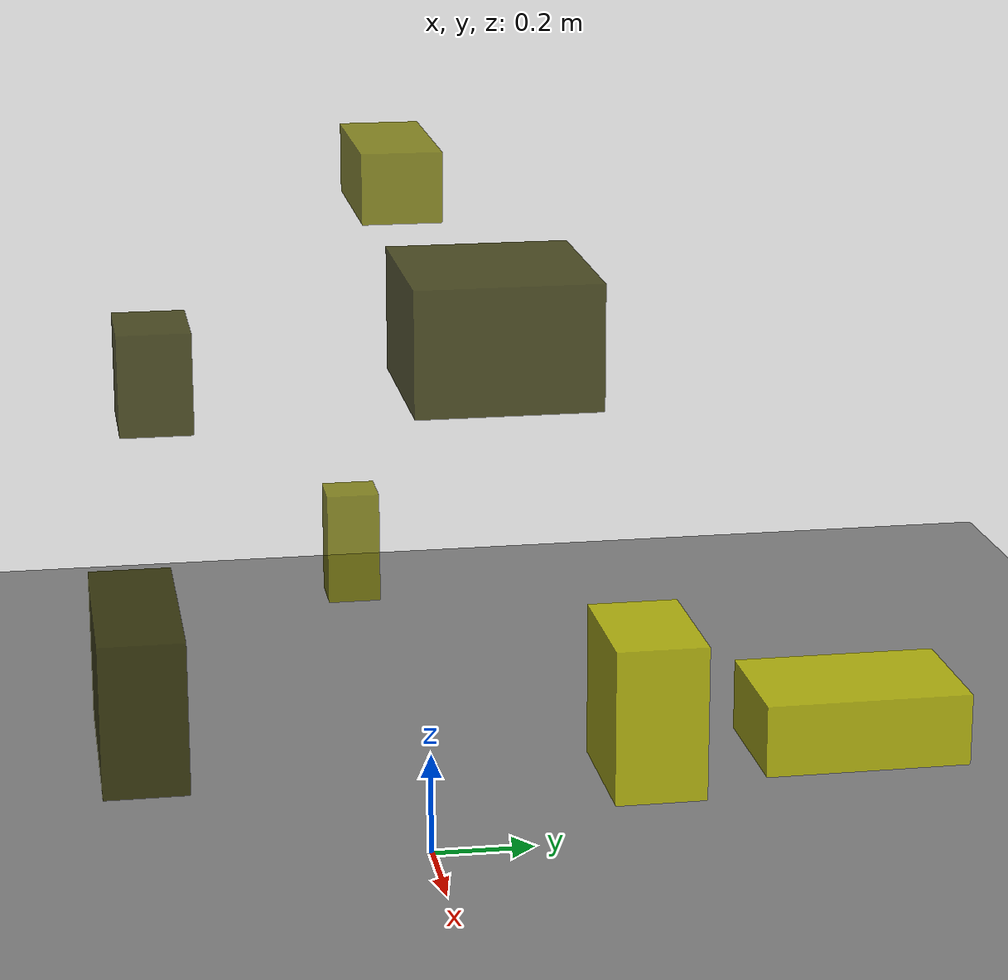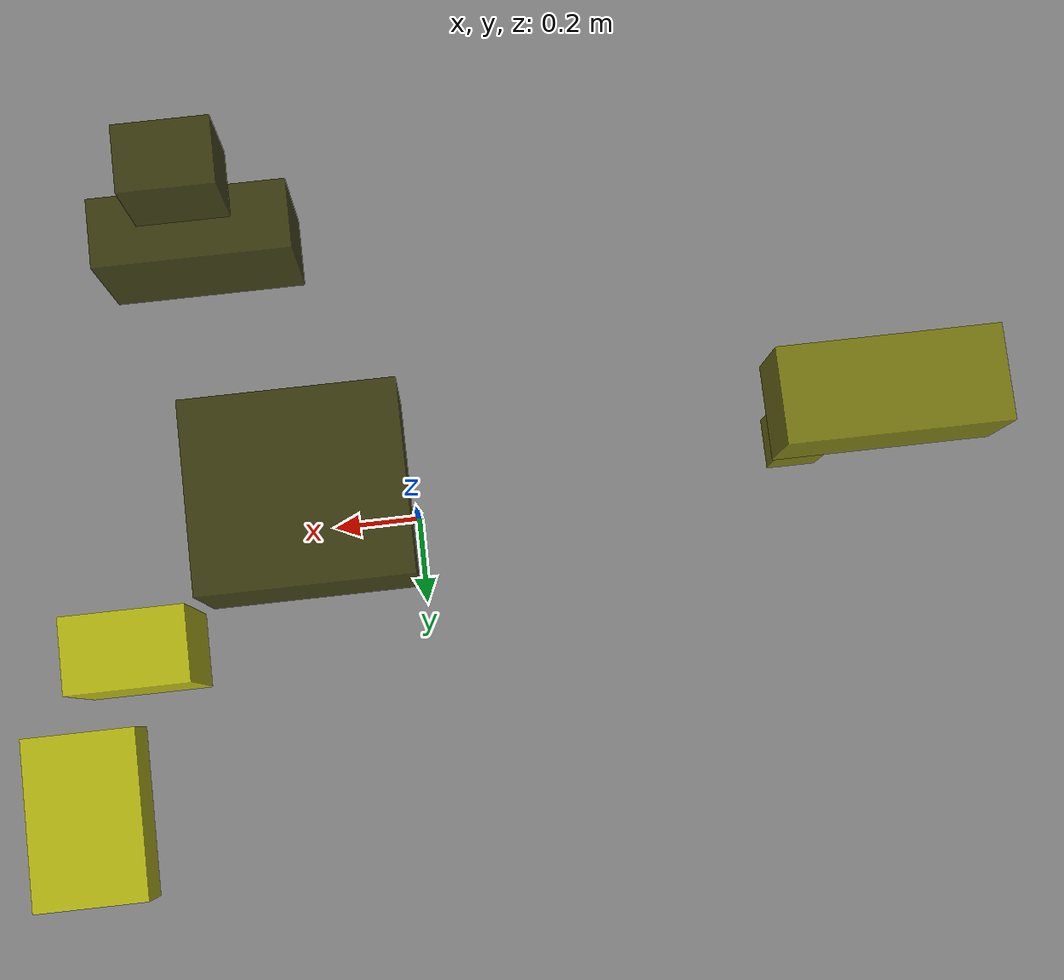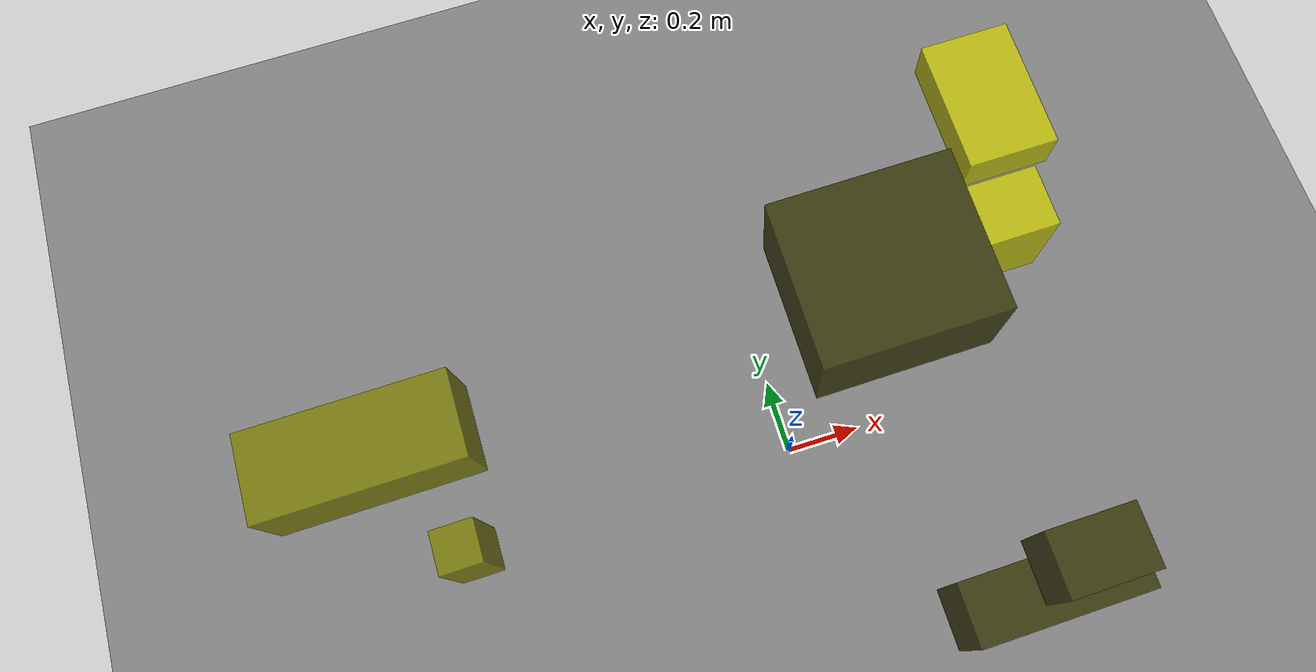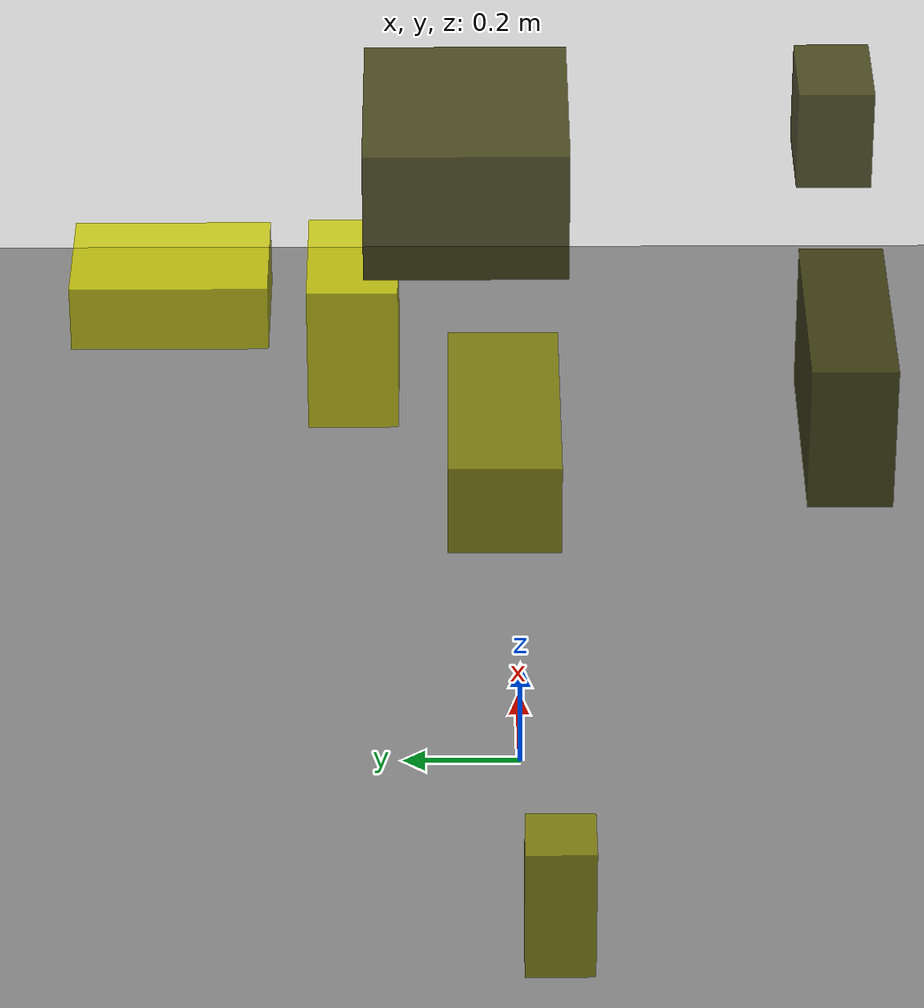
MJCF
<?xml version="1.0"?>
<mujoco model="obstacle_scene">
  <compiler angle="radian" coordinate="local"/>
  <option timestep="0.001" gravity="0 0 -9.81"/>

  <asset>
    <material name="obstacle_mat" rgba="0.8 0.8 0.0 0.8"/>
    <material name="ground_mat" rgba="0.5 0.5 0.5 1"/>
  </asset>

  <worldbody>
    <!-- Ground plane -->
    <geom name="ground" type="plane" size="3 3 0.1" material="ground_mat"/>

    <!-- Obstacles -->
    <body name="obstacle_0" pos="0.180031 0.091560 1.071756">
      <geom name="obs_0" type="box" size="0.183710 0.165501 0.112853" rgba="0.2 0.2 0.0 0.8"/>
    </body>
    <body name="obstacle_1" pos="-0.813090 0.040082 1.168317">
      <geom name="obs_1" type="box" size="0.186459 0.081471 0.071498" rgba="0.5 0.5 0.0 0.8"/>
    </body>
    <body name="obstacle_2" pos="0.718269 0.609389 0.518087">
      <geom name="obs_2" type="box" size="0.115651 0.173066 0.061037" rgba="0.8 0.8 0.0 0.8"/>
    </body>
    <body name="obstacle_3" pos="0.354992 -0.516024 1.058474">
      <geom name="obs_3" type="box" size="0.086529 0.061708 0.086875" rgba="0.2 0.2 0.0 0.8"/>
    </body>
    <body name="obstacle_4" pos="-0.850463 -0.049087 0.363234">
      <geom name="obs_4" type="box" size="0.053492 0.054686 0.117064" rgba="0.5 0.5 0.0 0.8"/>
    </body>
    <body name="obstacle_5" pos="0.597405 0.286230 0.512597">
      <geom name="obs_5" type="box" size="0.126422 0.078478 0.135267" rgba="0.8 0.8 0.0 0.8"/>
    </body>
    <body name="obstacle_6" pos="0.391999 -0.560633 0.527451">
      <geom name="obs_6" type="box" size="0.204273 0.072905 0.133971" rgba="0.2 0.2 0.0 0.8"/>
    </body>
  </worldbody>
</mujoco>
